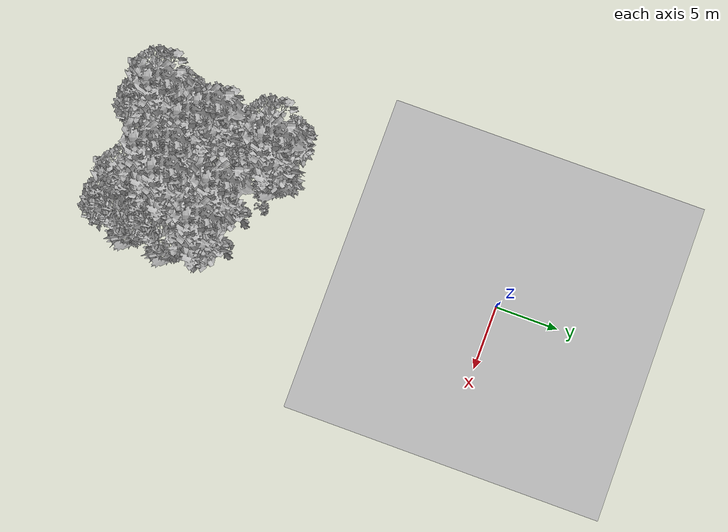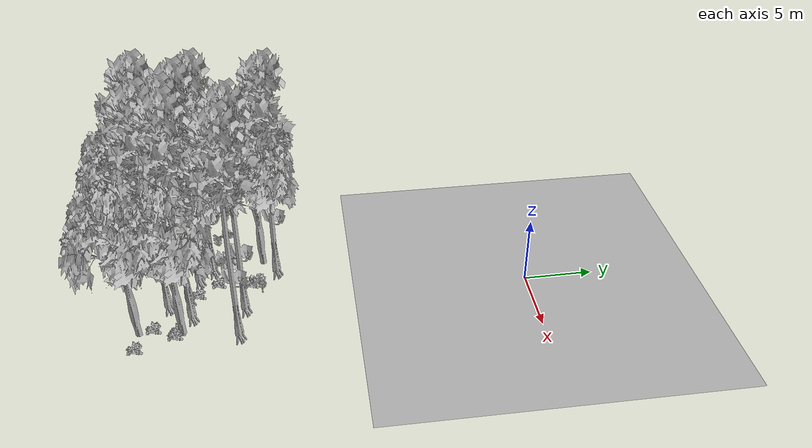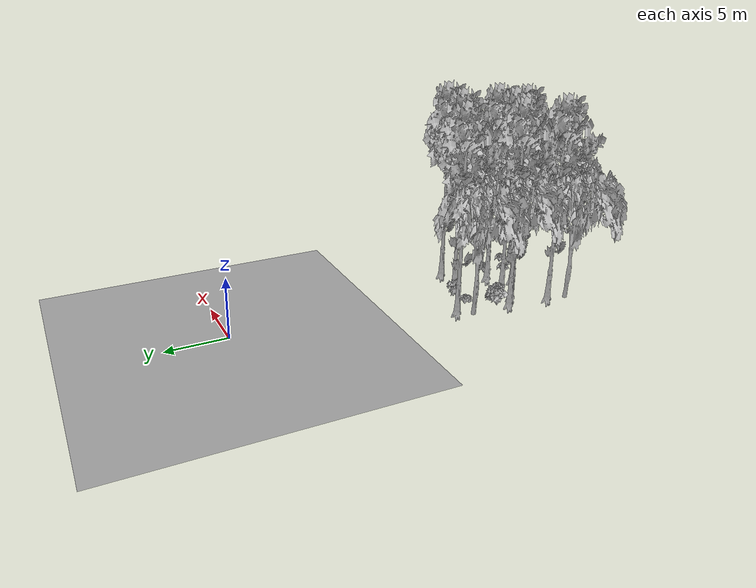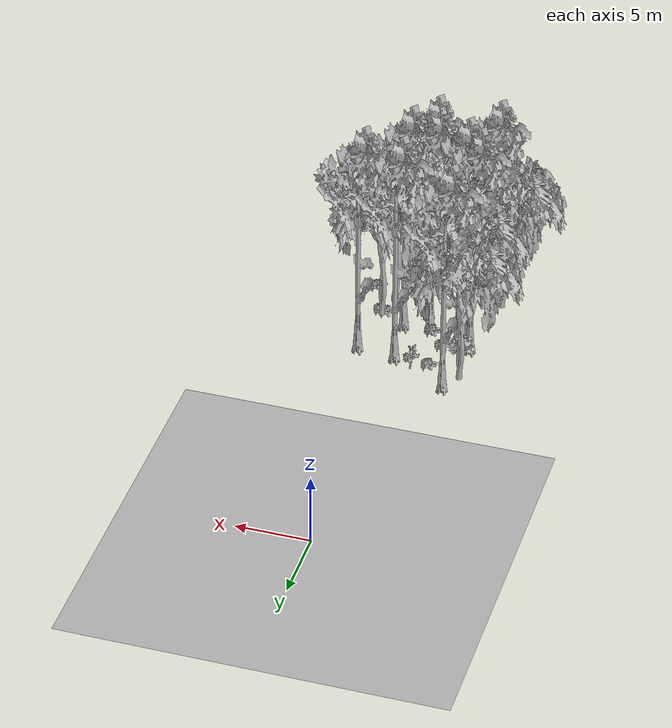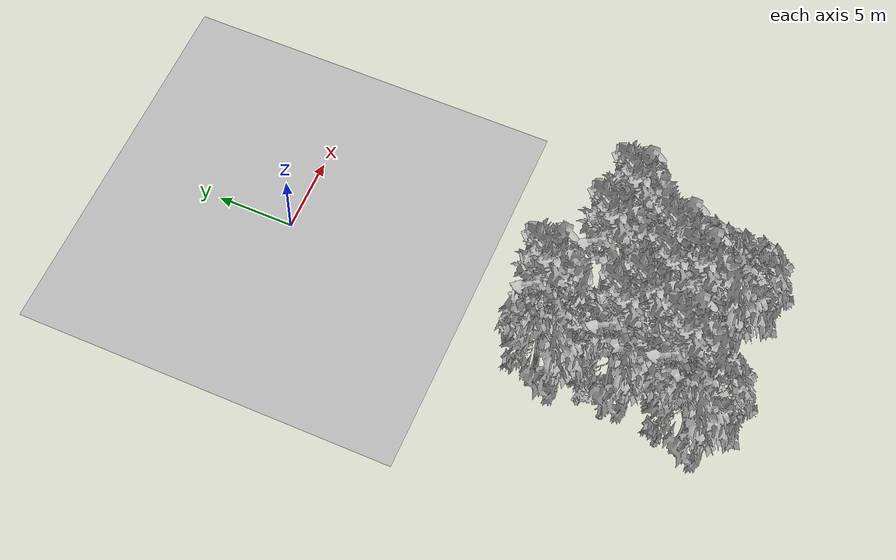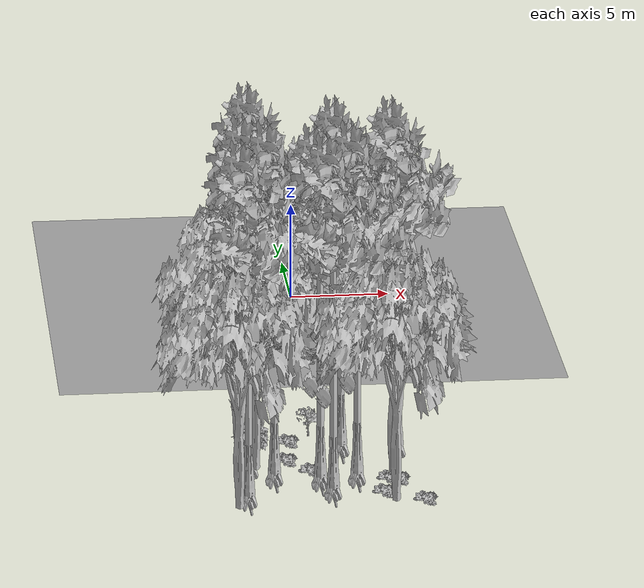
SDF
<sdf version="1.7">
 <world name="default">
  <model name="ground_plane">
   <static>1</static>
   <link name="link">
    <collision name="collision">
     <pose>-50 0 0 0 -0 0</pose>
     <geometry><plane><normal>0 0 1</normal><size>80 80</size></plane></geometry>
     <surface><contact><ode><min_depth>0.01</min_depth><max_vel>0</max_vel></ode></contact></surface>
    </collision>
    <visual name="grass">
     <cast_shadows>0</cast_shadows>
     <geometry>
      <mesh>
       <scale>0.46714285714285714 0.46714285714285714 0.1</scale>
       <uri>file://grass_plane/meshes/grass_plane.dae</uri>
      </mesh>
     </geometry>
    </visual>
   </link>
  </model>
  <model name="Tree 78">
   <static>1</static>
   <pose>-3.0233192997642107 -23.737386644191858 0 1.57079 -0 0</pose>
   <link name="link">
    <collision name="collision">
     <geometry><mesh><scale>3.5 5 3.5</scale><uri>model://tree_9/meshes/tree_9.obj</uri></mesh></geometry>
    </collision>
    <visual name="visual">
     <geometry><mesh><scale>3.5 5 3.5</scale><uri>model://tree_9/meshes/tree_9.obj</uri></mesh></geometry>
    </visual>
   </link>
  </model>
  <model name="Tree 82">
   <static>1</static>
   <pose>0.4855155025319391 -20.365086674088076 0 1.57079 -0 0</pose>
   <link name="link">
    <collision name="collision">
     <geometry><mesh><scale>3.5 5 3.5</scale><uri>model://tree_9/meshes/tree_9.obj</uri></mesh></geometry>
    </collision>
    <visual name="visual">
     <geometry><mesh><scale>3.5 5 3.5</scale><uri>model://tree_9/meshes/tree_9.obj</uri></mesh></geometry>
    </visual>
   </link>
  </model>
  <model name="Tree 154">
   <static>1</static>
   <pose>-3.467098626633117 -18.094998819680377 0 1.57079 -0 0</pose>
   <link name="link">
    <collision name="collision">
     <geometry><mesh><scale>3.5 5 3.5</scale><uri>model://tree_9/meshes/tree_9.obj</uri></mesh></geometry>
    </collision>
    <visual name="visual">
     <geometry><mesh><scale>3.5 5 3.5</scale><uri>model://tree_9/meshes/tree_9.obj</uri></mesh></geometry>
    </visual>
   </link>
  </model>
  <model name="Tree 166">
   <static>1</static>
   <pose>3.1708595939359085 -20.744875776130502 0 1.57079 -0 0</pose>
   <link name="link">
    <collision name="collision">
     <geometry><mesh><scale>3.5 5 3.5</scale><uri>model://tree_9/meshes/tree_9.obj</uri></mesh></geometry>
    </collision>
    <visual name="visual">
     <geometry><mesh><scale>3.5 5 3.5</scale><uri>model://tree_9/meshes/tree_9.obj</uri></mesh></geometry>
    </visual>
   </link>
  </model>
  <model name="Tree 170">
   <static>1</static>
   <pose>-4.4751500778357 -19.08246975305446 0 1.57079 -0 0</pose>
   <link name="link">
    <collision name="collision">
     <geometry><mesh><scale>3.5 5 3.5</scale><uri>model://tree_2/meshes/tree_2.obj</uri></mesh></geometry>
    </collision>
    <visual name="visual">
     <geometry><mesh><scale>3.5 5 3.5</scale><uri>model://tree_2/meshes/tree_2.obj</uri></mesh></geometry>
    </visual>
   </link>
  </model>
  <model name="Tree 286">
   <static>1</static>
   <pose>-4.108834501060137 -22.745570841779887 0 1.57079 -0 0</pose>
   <link name="link">
    <collision name="collision">
     <geometry><mesh><scale>3.5 5 3.5</scale><uri>model://tree_9/meshes/tree_9.obj</uri></mesh></geometry>
    </collision>
    <visual name="visual">
     <geometry><mesh><scale>3.5 5 3.5</scale><uri>model://tree_9/meshes/tree_9.obj</uri></mesh></geometry>
    </visual>
   </link>
  </model>
  <model name="Tree 302">
   <static>1</static>
   <pose>2.3092871184145167 -27.52025656458864 0 1.57079 -0 0</pose>
   <link name="link">
    <collision name="collision">
     <geometry><mesh><scale>3.5 5 3.5</scale><uri>model://tree_2/meshes/tree_2.obj</uri></mesh></geometry>
    </collision>
    <visual name="visual">
     <geometry><mesh><scale>3.5 5 3.5</scale><uri>model://tree_2/meshes/tree_2.obj</uri></mesh></geometry>
    </visual>
   </link>
  </model>
  <model name="Tree 356">
   <static>1</static>
   <pose>-0.8843334577683208 -24.335956233652468 0 1.57079 -0 0</pose>
   <link name="link">
    <collision name="collision">
     <geometry><mesh><scale>3.5 5 3.5</scale><uri>model://tree_9/meshes/tree_9.obj</uri></mesh></geometry>
    </collision>
    <visual name="visual">
     <geometry><mesh><scale>3.5 5 3.5</scale><uri>model://tree_9/meshes/tree_9.obj</uri></mesh></geometry>
    </visual>
   </link>
  </model>
  <model name="Tree 369">
   <static>1</static>
   <pose>-5.1088968057929875 -27.792005758333957 0 1.57079 -0 0</pose>
   <link name="link">
    <collision name="collision">
     <geometry><mesh><scale>3.5 5 3.5</scale><uri>model://tree_2/meshes/tree_2.obj</uri></mesh></geometry>
    </collision>
    <visual name="visual">
     <geometry><mesh><scale>3.5 5 3.5</scale><uri>model://tree_2/meshes/tree_2.obj</uri></mesh></geometry>
    </visual>
   </link>
  </model>
  <model name="Tree 389">
   <static>1</static>
   <pose>0.8971968144515188 -24.04171950242901 0 1.57079 -0 0</pose>
   <link name="link">
    <collision name="collision">
     <geometry><mesh><scale>3.5 5 3.5</scale><uri>model://tree_9/meshes/tree_9.obj</uri></mesh></geometry>
    </collision>
    <visual name="visual">
     <geometry><mesh><scale>3.5 5 3.5</scale><uri>model://tree_9/meshes/tree_9.obj</uri></mesh></geometry>
    </visual>
   </link>
  </model>
  <model name="Tree 442">
   <static>1</static>
   <pose>-0.4135476299933387 -25.751718968937016 0 1.57079 -0 0</pose>
   <link name="link">
    <collision name="collision">
     <geometry><mesh><scale>3.5 5 3.5</scale><uri>model://tree_9/meshes/tree_9.obj</uri></mesh></geometry>
    </collision>
    <visual name="visual">
     <geometry><mesh><scale>3.5 5 3.5</scale><uri>model://tree_9/meshes/tree_9.obj</uri></mesh></geometry>
    </visual>
   </link>
  </model>
  <model name="Tree 549">
   <static>1</static>
   <pose>-4.479546923833752 -26.36927140191674 0 1.57079 -0 0</pose>
   <link name="link">
    <collision name="collision">
     <geometry><mesh><scale>3.5 5 3.5</scale><uri>model://tree_9/meshes/tree_9.obj</uri></mesh></geometry>
    </collision>
    <visual name="visual">
     <geometry><mesh><scale>3.5 5 3.5</scale><uri>model://tree_9/meshes/tree_9.obj</uri></mesh></geometry>
    </visual>
   </link>
  </model>
  <model name="Tree 571">
   <static>1</static>
   <pose>2.4912511800941886 -24.556683532422674 0 1.57079 -0 0</pose>
   <link name="link">
    <collision name="collision">
     <geometry><mesh><scale>3.5 5 3.5</scale><uri>model://tree_2/meshes/tree_2.obj</uri></mesh></geometry>
    </collision>
    <visual name="visual">
     <geometry><mesh><scale>3.5 5 3.5</scale><uri>model://tree_2/meshes/tree_2.obj</uri></mesh></geometry>
    </visual>
   </link>
  </model>
  <model name="Tree 614">
   <static>1</static>
   <pose>-3.93633076855388 -23.02371107985655 0 1.57079 -0 0</pose>
   <link name="link">
    <collision name="collision">
     <geometry><mesh><scale>3.5 5 3.5</scale><uri>model://tree_2/meshes/tree_2.obj</uri></mesh></geometry>
    </collision>
    <visual name="visual">
     <geometry><mesh><scale>3.5 5 3.5</scale><uri>model://tree_2/meshes/tree_2.obj</uri></mesh></geometry>
    </visual>
   </link>
  </model>
  <model name="Bush 132">
   <static>1</static>
   <pose>1.9326415507708177 -26.60476333590113 0 1.57079 -0 0</pose>
   <link name="link">
    <collision name="collision">
     <geometry><mesh><scale>2 2 2</scale><uri>model://bush_2/meshes/bush_2.obj</uri></mesh></geometry>
     <surface><contact><collide_without_contact>false</collide_without_contact></contact></surface>
    </collision>
    <visual name="visual">
     <geometry><mesh><scale>2 2 2</scale><uri>model://bush_2/meshes/bush_2.obj</uri></mesh></geometry>
    </visual>
   </link>
  </model>
  <model name="Bush 197">
   <static>1</static>
   <pose>2.31805789289713 -24.93091307514984 0 1.57079 -0 0</pose>
   <link name="link">
    <collision name="collision">
     <geometry><mesh><scale>2 2 2</scale><uri>model://bush_2/meshes/bush_2.obj</uri></mesh></geometry>
     <surface><contact><collide_without_contact>false</collide_without_contact></contact></surface>
    </collision>
    <visual name="visual">
     <geometry><mesh><scale>2 2 2</scale><uri>model://bush_2/meshes/bush_2.obj</uri></mesh></geometry>
    </visual>
   </link>
  </model>
  <model name="Bush 275">
   <static>1</static>
   <pose>-2.3526354546005877 -22.31167159013779 0 1.57079 -0 0</pose>
   <link name="link">
    <collision name="collision">
     <geometry><mesh><scale>2 2 2</scale><uri>model://bush_2/meshes/bush_2.obj</uri></mesh></geometry>
     <surface><contact><collide_without_contact>false</collide_without_contact></contact></surface>
    </collision>
    <visual name="visual">
     <geometry><mesh><scale>2 2 2</scale><uri>model://bush_2/meshes/bush_2.obj</uri></mesh></geometry>
    </visual>
   </link>
  </model>
  <model name="Bush 337">
   <static>1</static>
   <pose>-0.9557703511356053 -19.13642985326114 0 1.57079 -0 0</pose>
   <link name="link">
    <collision name="collision">
     <geometry><mesh><scale>2 2 2</scale><uri>model://bush_5/meshes/bush_5.obj</uri></mesh></geometry>
     <surface><contact><collide_without_contact>false</collide_without_contact></contact></surface>
    </collision>
    <visual name="visual">
     <geometry><mesh><scale>2 2 2</scale><uri>model://bush_5/meshes/bush_5.obj</uri></mesh></geometry>
    </visual>
   </link>
  </model>
  <model name="Bush 344">
   <static>1</static>
   <pose>-3.900112202384456 -21.67118576900137 0 1.57079 -0 0</pose>
   <link name="link">
    <collision name="collision">
     <geometry><mesh><scale>2 2 2</scale><uri>model://bush_1/meshes/bush_1.obj</uri></mesh></geometry>
     <surface><contact><collide_without_contact>false</collide_without_contact></contact></surface>
    </collision>
    <visual name="visual">
     <geometry><mesh><scale>2 2 2</scale><uri>model://bush_1/meshes/bush_1.obj</uri></mesh></geometry>
    </visual>
   </link>
  </model>
  <model name="Bush 432">
   <static>1</static>
   <pose>-2.0555043060444618 -19.970496491660086 0 1.57079 -0 0</pose>
   <link name="link">
    <collision name="collision">
     <geometry><mesh><scale>2 2 2</scale><uri>model://bush_2/meshes/bush_2.obj</uri></mesh></geometry>
     <surface><contact><collide_without_contact>false</collide_without_contact></contact></surface>
    </collision>
    <visual name="visual">
     <geometry><mesh><scale>2 2 2</scale><uri>model://bush_2/meshes/bush_2.obj</uri></mesh></geometry>
    </visual>
   </link>
  </model>
  <model name="Bush 467">
   <static>1</static>
   <pose>2.7488681527104575 -25.089263662036466 0 1.57079 -0 0</pose>
   <link name="link">
    <collision name="collision">
     <geometry><mesh><scale>2 2 2</scale><uri>model://bush_2/meshes/bush_2.obj</uri></mesh></geometry>
     <surface><contact><collide_without_contact>false</collide_without_contact></contact></surface>
    </collision>
    <visual name="visual">
     <geometry><mesh><scale>2 2 2</scale><uri>model://bush_2/meshes/bush_2.obj</uri></mesh></geometry>
    </visual>
   </link>
  </model>
  <model name="Bush 566">
   <static>1</static>
   <pose>-1.283129245907638 -23.717990109981955 0 1.57079 -0 0</pose>
   <link name="link">
    <collision name="collision">
     <geometry><mesh><scale>2 2 2</scale><uri>model://bush_2/meshes/bush_2.obj</uri></mesh></geometry>
     <surface><contact><collide_without_contact>false</collide_without_contact></contact></surface>
    </collision>
    <visual name="visual">
     <geometry><mesh><scale>2 2 2</scale><uri>model://bush_2/meshes/bush_2.obj</uri></mesh></geometry>
    </visual>
   </link>
  </model>
  <model name="Bush 585">
   <static>1</static>
   <pose>3.768566183852883 -27.68049083892386 0 1.57079 -0 0</pose>
   <link name="link">
    <collision name="collision">
     <geometry><mesh><scale>2 2 2</scale><uri>model://bush_2/meshes/bush_2.obj</uri></mesh></geometry>
     <surface><contact><collide_without_contact>false</collide_without_contact></contact></surface>
    </collision>
    <visual name="visual">
     <geometry><mesh><scale>2 2 2</scale><uri>model://bush_2/meshes/bush_2.obj</uri></mesh></geometry>
    </visual>
   </link>
  </model>
 </world>
</sdf>
